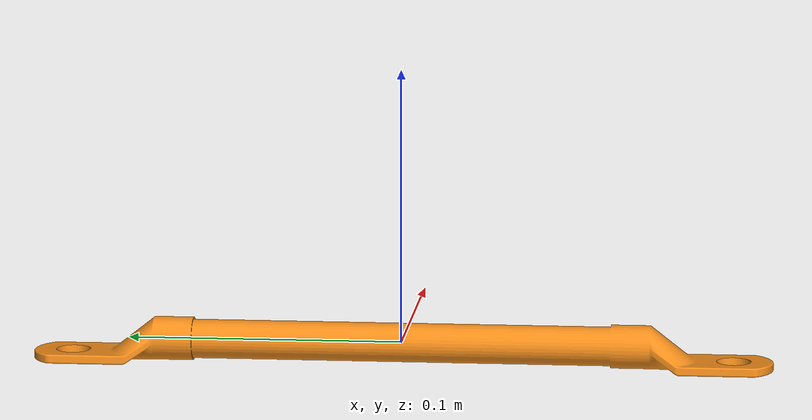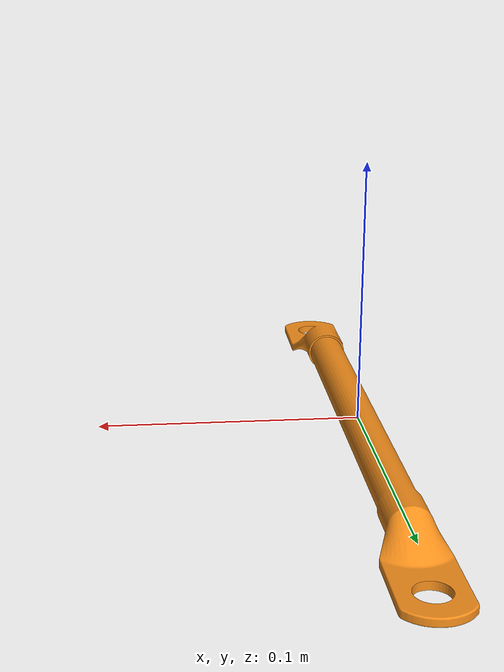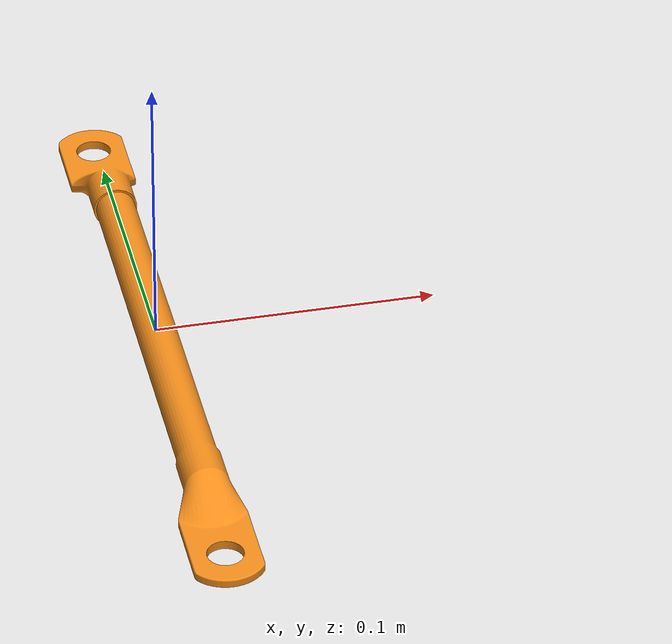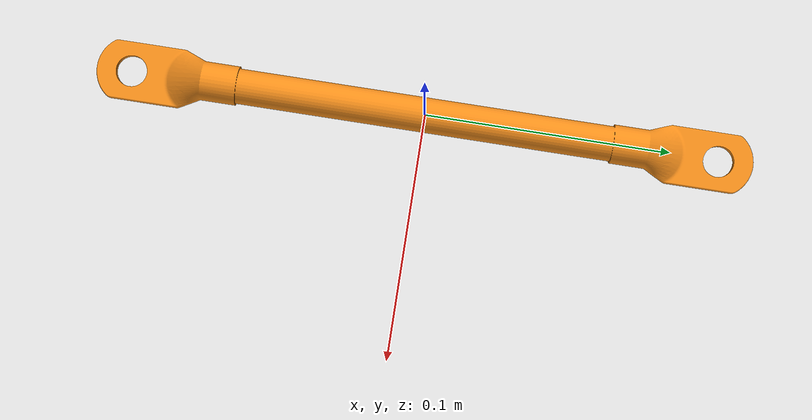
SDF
<?xml version='1.0'?>
<sdf version='1.6'>
  <model name='HW_HV_cable_sc_1'>
    <link name='link_1'>
      <inertial>
        <mass>0.05</mass>
        <inertia>
          <ixx>0.00017</ixx>
          <ixy>0</ixy>
          <ixz>0</ixz>
          <iyy>3.3333e-5</iyy>
          <iyz>0</iyz>
          <izz>0.00017</izz>
        </inertia>
      </inertial>
      <pose>0 0 -0 0 -0 0</pose>
      <visual name='visual'>
        <pose>0 0 0 0 -0 0</pose>
        <geometry>
          <mesh>
            <uri>/home/wanghu26/battery_ws/src/battery_model/battery_model_stl/HW_HV_cable .stl</uri>
            <scale>1 1 1</scale>
          </mesh>
        </geometry>
        <material>
          <lighting>1</lighting>
          <script>
            <uri>file://media/materials/scripts/gazebo.material</uri>
            <name>Gazebo/Orange</name>
          </script>
          <shader type='pixel'/>
        </material>
        <transparency>0</transparency>
        <cast_shadows>1</cast_shadows>
      </visual>
      <collision name='collision'>
        <laser_retro>0</laser_retro>
        <max_contacts>10</max_contacts>
        <pose>0 0 0 0 -0 0</pose>
        <geometry>
            <box>
              <size>0.04 0.2 0.04</size>
            </box>
        </geometry>
        <surface>
          <friction>
            <ode>
              <mu>1</mu>
              <mu2>1</mu2>
              <fdir1>0 0 0</fdir1>
              <slip1>0</slip1>
              <slip2>0</slip2>
            </ode>
            <torsional>
              <coefficient>1</coefficient>
              <patch_radius>0</patch_radius>
              <surface_radius>0</surface_radius>
              <use_patch_radius>1</use_patch_radius>
              <ode>
                <slip>0</slip>
              </ode>
            </torsional>
          </friction>
          <bounce>
            <restitution_coefficient>0</restitution_coefficient>
            <threshold>1e+06</threshold>
          </bounce>
          <contact>
            <collide_without_contact>0</collide_without_contact>
            <collide_without_contact_bitmask>1</collide_without_contact_bitmask>
            <collide_bitmask>1</collide_bitmask>
            <ode>
              <soft_cfm>0</soft_cfm>
              <soft_erp>0.2</soft_erp>
              <kp>100000</kp>
              <kd>100</kd>
              <max_vel>0.01</max_vel>
              <min_depth>0.001</min_depth>
            </ode>
            <bullet>
              <split_impulse>1</split_impulse>
              <split_impulse_penetration_threshold>-0.01</split_impulse_penetration_threshold>
              <soft_cfm>0</soft_cfm>
              <soft_erp>0.2</soft_erp>
              <kp>100000</kp>
              <kd>100</kd>
            </bullet>
          </contact>
        </surface>
      </collision>
    </link>
    <static>0</static>
    <allow_auto_disable>1</allow_auto_disable>

  <plugin name="groun_truth" filename="libgazebo_ros_p3d.so">
	<frameName>map</frameName>
	<bodyName>link_1</bodyName>
	<topicName>odom1a</topicName>
	<updateRate>30.0</updateRate>
  </plugin>

  </model>
</sdf>
